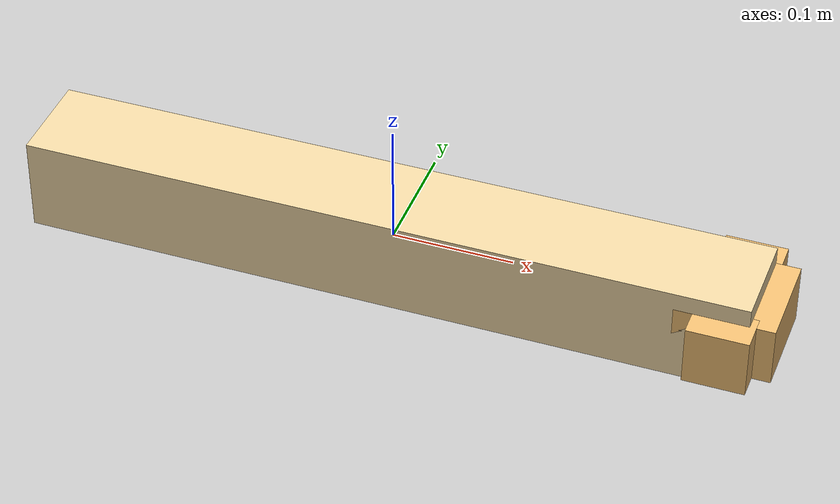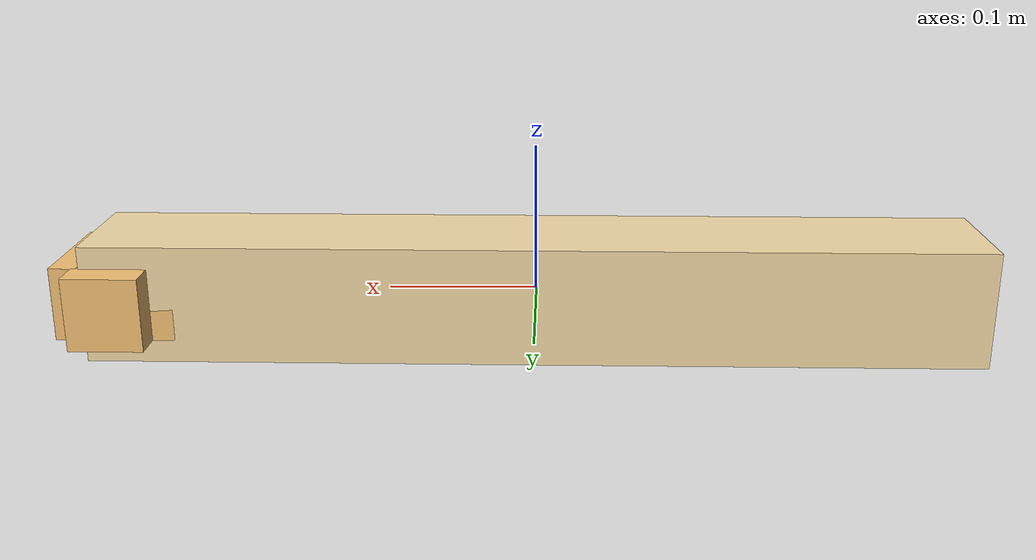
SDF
<?xml version="1.0" ?>
<sdf version="1.7">
  <model name="right_arm_block">
    <static>false</static>
    <link name="right_arm">
      <inertial><mass>3.0</mass><pose>0 0 0 0 0 0</pose>
        <inertia><ixx>0.02</ixx><ixy>0</ixy><ixz>0</ixz><iyy>0.02</iyy><iyz>0</iyz><izz>0.002</izz></inertia>
      </inertial>
      <visual name="vis"><geometry><box><size>0.60 0.08 0.08</size></box></geometry>
        <material><diffuse>0.95 0.85 0.65 1</diffuse></material></visual>
      <collision name="col"><geometry><box><size>0.60 0.08 0.08</size></box></geometry></collision>

      <!-- Lego-style clamp so the bar can rest inside the hand -->
      <visual name="hand_palm_vis">
        <pose>0.28 0 0 3.14159265359 3.14159265359 0</pose>
        <geometry><box><size>0.08 0.08 0.05</size></box></geometry>
        <material><diffuse>0.95 0.75 0.45 1</diffuse></material>
      </visual>
      <visual name="hand_finger_upper_vis">
        <pose>0.28 0.045 0 3.14159265359 3.14159265359 0</pose>
        <geometry><box><size>0.05 0.03 0.05</size></box></geometry>
        <material><diffuse>0.95 0.75 0.45 1</diffuse></material>
      </visual>
      <visual name="hand_finger_lower_vis">
        <pose>0.28 -0.045 0 3.14159265359 3.14159265359 0</pose>
        <geometry><box><size>0.05 0.03 0.05</size></box></geometry>
        <material><diffuse>0.95 0.75 0.45 1</diffuse></material>
      </visual>
      <collision name="hand_palm_col">
        <pose>0.28 0 0 3.14159265359 3.14159265359 0</pose>
        <geometry><box><size>0.08 0.08 0.05</size></box></geometry>
      </collision>
      <collision name="hand_finger_upper_col">
        <pose>0.28 0.045 0 3.14159265359 3.14159265359 0</pose>
        <geometry><box><size>0.05 0.03 0.05</size></box></geometry>
      </collision>
      <collision name="hand_finger_lower_col">
        <pose>0.28 -0.045 0 3.14159265359 3.14159265359 0</pose>
        <geometry><box><size>0.05 0.03 0.05</size></box></geometry>
      </collision>

    </link>
  </model>
</sdf>
